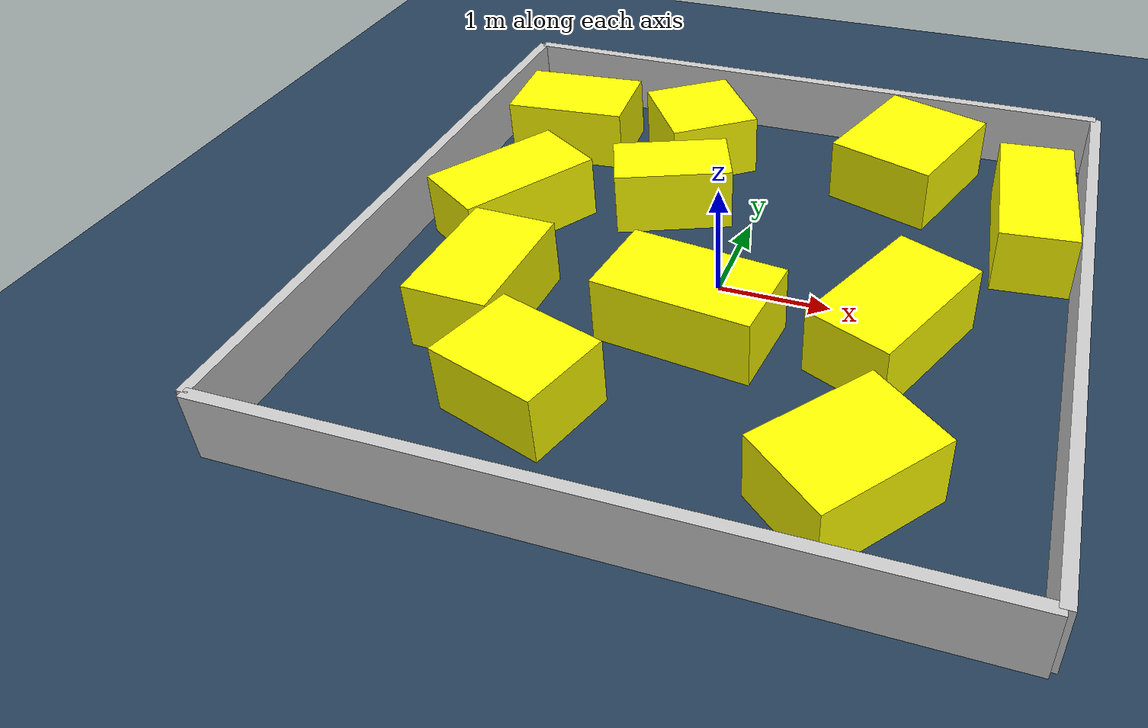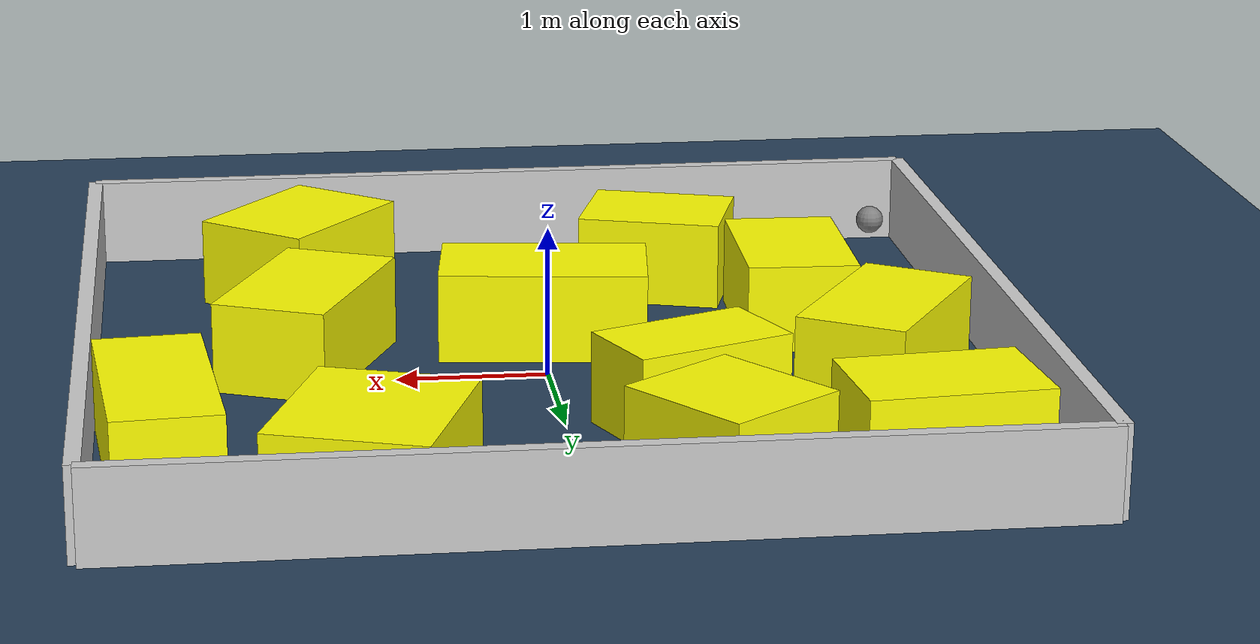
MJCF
<?xml version="1.0" ?>
<mujoco model="generated_environment">
  <option timestep="0.01" integrator="RK4" cone="elliptic"/>
  <default>
    <geom density="1"/>
  </default>
  <asset>
    <texture builtin="gradient" height="3072" rgb1="0.3 0.5 0.7" rgb2="0 0 0" type="skybox" width="512"/>
    <texture builtin="checker" height="300" mark="edge" markrgb="0.8 0.8 0.8" name="groundplane" rgb1="0.2 0.3 0.4" rgb2="0.1 0.2 0.3" type="2d" width="300"/>
    <material name="groundplane" reflectance="0.2" texrepeat="5 5" texture="groundplane" texuniform="true"/>
    <material name="robot" rgba="1.0 1.0 0.0 1.0"/>
  </asset>
  <worldbody>
    <light dir="0 0 -1" directional="true" pos="0 0 1.5"/>
    <geom condim="4" friction="0.5 0.005 0.001" material="groundplane" name="floor" size="0 0 0.05" type="plane"/>
    <body name="walls">
      <geom name="wall_1" condim="4" pos="-3.0 0.0 0.3" rgba="0.800000011920929 0.800000011920929 0.800000011920929 1.0" size="0.05 3.0 0.3" type="box"/>
      <geom name="wall_2" condim="4" pos="3.0 0.0 0.3" rgba="0.800000011920929 0.800000011920929 0.800000011920929 1.0" size="0.05 3.0 0.3" type="box"/>
      <geom name="wall_3" condim="4" pos="0.0 -3.0 0.3" rgba="0.800000011920929 0.800000011920929 0.800000011920929 1.0" size="3.0 0.05 0.3" type="box"/>
      <geom name="wall_4" condim="4" pos="0.0 3.0 0.3" rgba="0.800000011920929 0.800000011920929 0.800000011920929 1.0" size="3.0 0.05 0.3" type="box"/>
    </body>
    <body name="robot">
      <joint name="joint_x" type="slide" pos="0 0 0" axis="1 0 0"/>
      <joint name="joint_y" type="slide" pos="0 0 0" axis="0 1 0"/>
      <geom name="robot" type="sphere" pos="-2.75 -2.75 0.2" size="0.1 0.0 0.0" mass="5.0" friction="1.0 0.005 0.001" condim="4" rgba="0.5 0.5 0.5 1.0"/>
    </body>
    <body name="obstacle_1_movable">
      <geom name="obstacle_1_movable" condim="4" pos="-0.0455556068118379 -0.6532622763193918 0.3" euler="0 0 352.986940608058" friction="0.0 0.005 0.001" rgba="1 1 0 1" size="0.697269861981751 0.39724781834926237 0.3" type="box" mass="0.1"/>
      <joint type="free"/>
    </body>
    <body name="obstacle_2_movable">
      <geom name="obstacle_2_movable" condim="4" pos="-0.7903498961726516 1.0433551244820665 0.3" euler="0 0 22.421122644944962" friction="0.0 0.005 0.001" rgba="1 1 0 1" size="0.5440585134674384 0.31958270678845496 0.3" type="box" mass="0.1"/>
      <joint type="free"/>
    </body>
    <body name="obstacle_3_movable">
      <geom name="obstacle_3_movable" condim="4" pos="1.5470526629002666 -2.0420212695533944 0.3" euler="0 0 231.41800297588549" friction="0.0 0.005 0.001" rgba="1 1 0 1" size="0.5738909331478994 0.4206360494569798 0.3" type="box" mass="0.1"/>
      <joint type="free"/>
    </body>
    <body name="obstacle_4_movable">
      <geom name="obstacle_4_movable" condim="4" pos="1.5717762569104528 -0.35838232157234473 0.3" euler="0 0 156.4262938491239" friction="0.0 0.005 0.001" rgba="1 1 0 1" size="0.38748245026932104 0.6743482307219906 0.3" type="box" mass="0.1"/>
      <joint type="free"/>
    </body>
    <body name="obstacle_5_movable">
      <geom name="obstacle_5_movable" condim="4" pos="-1.7849072811528588 -0.8834340028232597 0.3" euler="0 0 358.1356338442276" friction="0.0 0.005 0.001" rgba="1 1 0 1" size="0.37683727974120745 0.6031131603163762 0.3" type="box" mass="0.1"/>
      <joint type="free"/>
    </body>
    <body name="obstacle_6_movable">
      <geom name="obstacle_6_movable" condim="4" pos="-2.1585115452750796 0.4286554496020023 0.3" euler="0 0 58.01639129722456" friction="0.0 0.005 0.001" rgba="1 1 0 1" size="0.6611832543754661 0.36959060792070786 0.3" type="box" mass="0.1"/>
      <joint type="free"/>
    </body>
    <body name="obstacle_7_movable">
      <geom name="obstacle_7_movable" condim="4" pos="2.5400882089485206 1.5064029667976406 0.3" euler="0 0 4.854020435553994" friction="0.0 0.005 0.001" rgba="1 1 0 1" size="0.3419633406121753 0.7841347697859167 0.3" type="box" mass="0.1"/>
      <joint type="free"/>
    </body>
    <body name="obstacle_8_movable">
      <geom name="obstacle_8_movable" condim="4" pos="1.2804930288967369 2.1875042406768843 0.3" euler="0 0 341.07034503396363" friction="0.0 0.005 0.001" rgba="1 1 0 1" size="0.5109813724355274 0.6175580256711075 0.3" type="box" mass="0.1"/>
      <joint type="free"/>
    </body>
    <body name="obstacle_9_movable">
      <geom name="obstacle_9_movable" condim="4" pos="-0.9970690778013289 -1.8450111488755412 0.3" euler="0 0 162.5012844908154" friction="0.0 0.005 0.001" rgba="1 1 0 1" size="0.49870244498177396 0.3982035886529839 0.3" type="box" mass="0.1"/>
      <joint type="free"/>
    </body>
    <body name="obstacle_10_movable">
      <geom name="obstacle_10_movable" condim="4" pos="-2.1751594785520765 2.001929841580322 0.3" euler="0 0 274.7391625003793" friction="0.0 0.005 0.001" rgba="1 1 0 1" size="0.4039134656850845 0.5854767087072821 0.3" type="box" mass="0.1"/>
      <joint type="free"/>
    </body>
    <body name="obstacle_11_movable">
      <geom name="obstacle_11_movable" condim="4" pos="-0.8550179757080028 2.1245739308321663 0.3" euler="0 0 306.8123118373237" friction="0.0 0.005 0.001" rgba="1 1 0 1" size="0.4683692679802779 0.4331480596161315 0.3" type="box" mass="0.1"/>
      <joint type="free"/>
    </body>
  </worldbody>
  <actuator>
    <motor name="actuator_x" joint="joint_x" gear="1" ctrlrange="-1 1"/>
    <motor name="actuator_y" joint="joint_y" gear="1" ctrlrange="-1 1"/>
  </actuator>
</mujoco>
